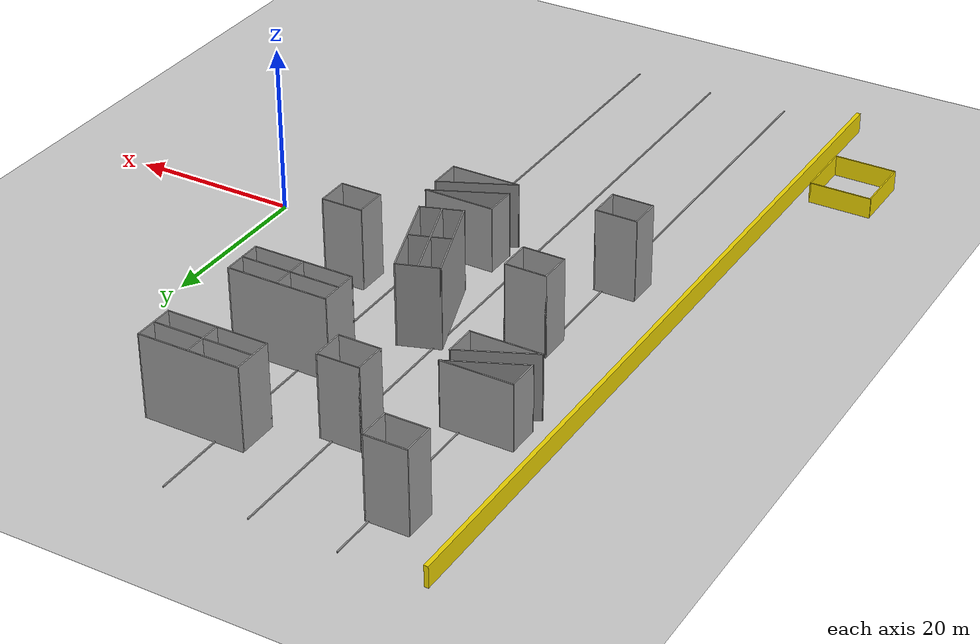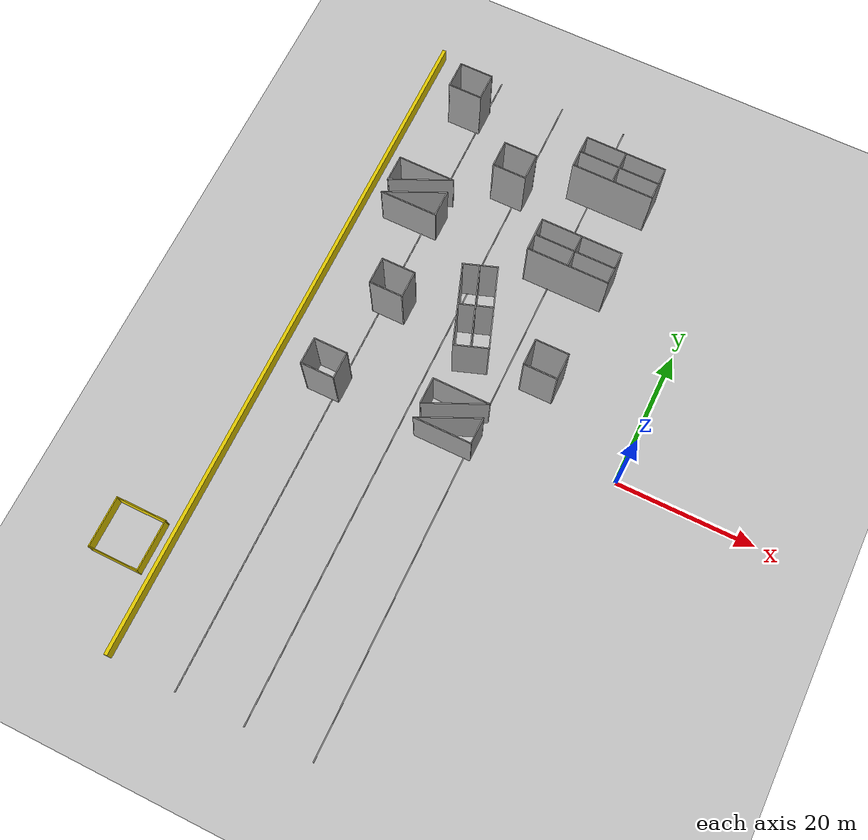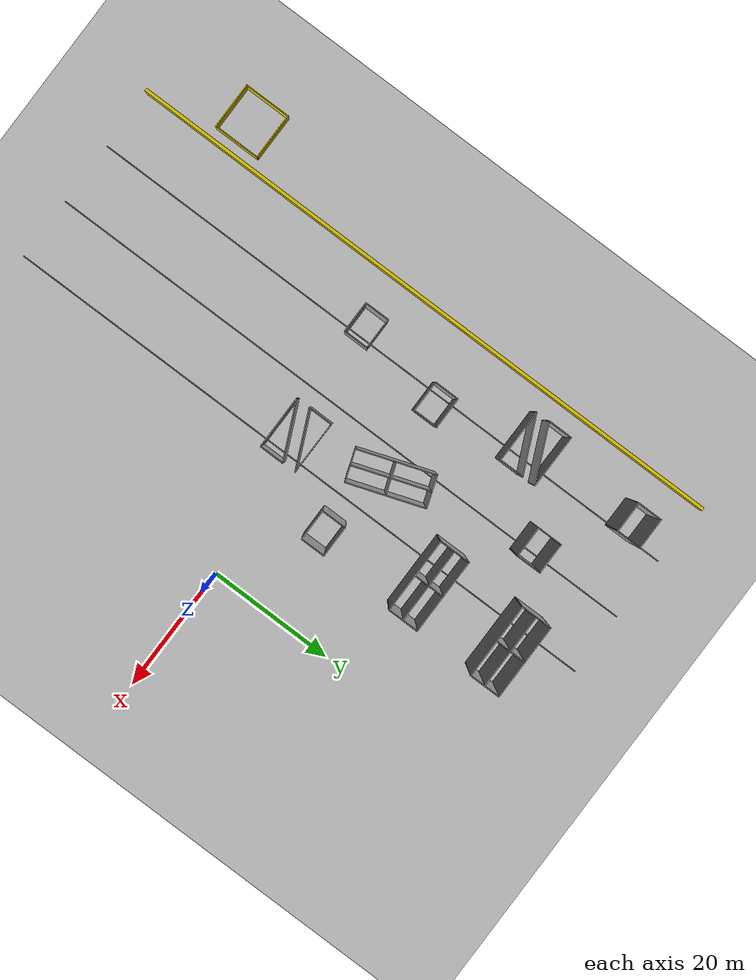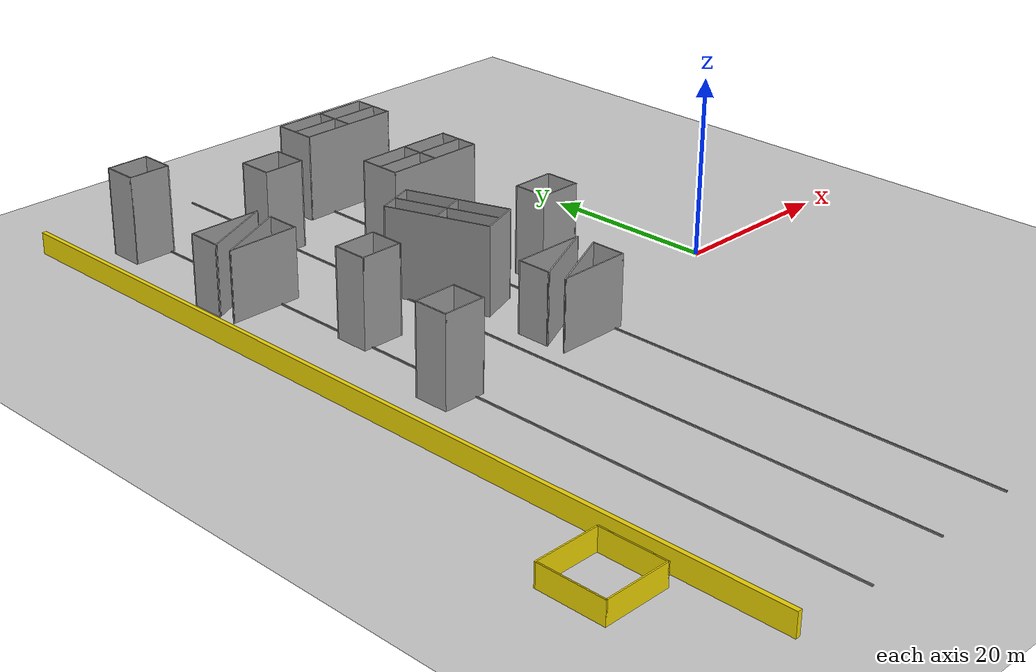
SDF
<sdf version="1.7">
 <world name="default">
  <model name="ground_plane">
   <static>1</static>
   <link name="link">
    <collision name="collision">
     <geometry><plane><normal>0 0 1</normal><size>100 100</size></plane></geometry>
     <surface><friction><ode><mu>100</mu><mu2>50</mu2></ode></friction></surface>
    </collision>
    <visual name="visual">
     <cast_shadows>0</cast_shadows>
     <geometry><plane><normal>0 0 1</normal><size>100 100</size></plane></geometry>
     <material>
      <script><uri>file://media/materials/scripts/gazebo.material</uri><name>Gazebo/Grey</name></script>
     </material>
    </visual>
   </link>
  </model>
  <model name="gridline100m_clone_0_clone_clone_0_clone">
   <link name="Wall_2">
    <pose>2e-06 -3.05812 0 0 -0 1.571</pose>
    <inertial>
     <mass>1</mass>
     <inertia><ixx>1</ixx><ixy>0</ixy><ixz>0</ixz><iyy>1</iyy><iyz>0</iyz><izz>1</izz></inertia>
    </inertial>
    <visual name="Wall_2_Visual">
     <pose>0 0 0.075 0 -0 0</pose>
     <geometry><box><size>100 0.15 0.15</size></box></geometry>
     <material>
      <script><uri>file://media/materials/scripts/gazebo.material</uri><name>Gazebo/Grey</name></script>
      <ambient>0 0 0 1</ambient>
      <shader type="pixel"><normal_map>__default__</normal_map></shader>
      <diffuse>0.7 0.7 0.7 1</diffuse>
      <specular>0.01 0.01 0.01 1</specular>
      <emissive>0 0 0 1</emissive>
     </material>
     <meta><layer>0</layer></meta>
    </visual>
    <collision name="Wall_2_Collision">
     <pose>0 0 0.075 0 -0 0</pose>
     <geometry><box><size>100 0.15 0.15</size></box></geometry>
     <surface>
      <friction>
       <ode><mu>1</mu><mu2>1</mu2><fdir1>0 0 0</fdir1><slip1>0</slip1><slip2>0</slip2></ode>
       <torsional>
        <coefficient>1</coefficient>
        <patch_radius>0</patch_radius>
        <surface_radius>0</surface_radius>
        <use_patch_radius>1</use_patch_radius>
        <ode><slip>0</slip></ode>
       </torsional>
      </friction>
      <bounce><restitution_coefficient>0</restitution_coefficient><threshold>1e+06</threshold></bounce>
      <contact>
       <collide_without_contact>0</collide_without_contact>
       <collide_without_contact_bitmask>1</collide_without_contact_bitmask>
       <collide_bitmask>1</collide_bitmask>
       <ode>
        <soft_cfm>0</soft_cfm>
        <soft_erp>0.2</soft_erp>
        <kp>1e+13</kp>
        <kd>1</kd>
        <max_vel>0.01</max_vel>
        <min_depth>0</min_depth>
       </ode>
       <bullet>
        <split_impulse>1</split_impulse>
        <split_impulse_penetration_threshold>-0.01</split_impulse_penetration_threshold>
        <soft_cfm>0</soft_cfm>
        <soft_erp>0.2</soft_erp>
        <kp>1e+13</kp>
        <kd>1</kd>
       </bullet>
      </contact>
     </surface>
    </collision>
   </link>
   <static>1</static>
   <pose>-20.0665 3.08574 0 0 -0 0</pose>
  </model>
  <model name="gridline100m_clone_0_clone_clone_0_clone_clone">
   <link name="Wall_2">
    <pose>2e-06 -3.05812 0 0 -0 1.571</pose>
    <inertial>
     <mass>1</mass>
     <inertia><ixx>1</ixx><ixy>0</ixy><ixz>0</ixz><iyy>1</iyy><iyz>0</iyz><izz>1</izz></inertia>
    </inertial>
    <visual name="Wall_2_Visual">
     <pose>0 0 0.075 0 -0 0</pose>
     <geometry><box><size>100 0.15 0.15</size></box></geometry>
     <material>
      <script><uri>file://media/materials/scripts/gazebo.material</uri><name>Gazebo/Grey</name></script>
      <ambient>0 0 0 1</ambient>
      <shader type="pixel"><normal_map>__default__</normal_map></shader>
      <diffuse>0.7 0.7 0.7 1</diffuse>
      <specular>0.01 0.01 0.01 1</specular>
      <emissive>0 0 0 1</emissive>
     </material>
     <meta><layer>0</layer></meta>
    </visual>
    <collision name="Wall_2_Collision">
     <pose>0 0 0.075 0 -0 0</pose>
     <geometry><box><size>100 0.15 0.15</size></box></geometry>
     <surface>
      <friction>
       <ode><mu>1</mu><mu2>1</mu2><fdir1>0 0 0</fdir1><slip1>0</slip1><slip2>0</slip2></ode>
       <torsional>
        <coefficient>1</coefficient>
        <patch_radius>0</patch_radius>
        <surface_radius>0</surface_radius>
        <use_patch_radius>1</use_patch_radius>
        <ode><slip>0</slip></ode>
       </torsional>
      </friction>
      <bounce><restitution_coefficient>0</restitution_coefficient><threshold>1e+06</threshold></bounce>
      <contact>
       <collide_without_contact>0</collide_without_contact>
       <collide_without_contact_bitmask>1</collide_without_contact_bitmask>
       <collide_bitmask>1</collide_bitmask>
       <ode>
        <soft_cfm>0</soft_cfm>
        <soft_erp>0.2</soft_erp>
        <kp>1e+13</kp>
        <kd>1</kd>
        <max_vel>0.01</max_vel>
        <min_depth>0</min_depth>
       </ode>
       <bullet>
        <split_impulse>1</split_impulse>
        <split_impulse_penetration_threshold>-0.01</split_impulse_penetration_threshold>
        <soft_cfm>0</soft_cfm>
        <soft_erp>0.2</soft_erp>
        <kp>1e+13</kp>
        <kd>1</kd>
       </bullet>
      </contact>
     </surface>
    </collision>
   </link>
   <static>1</static>
   <pose>-30.0159 3.12682 0 0 -0 0</pose>
  </model>
  <model name="gridline100m_clone_0_clone_clone_0_clone_clone_clone">
   <link name="Wall_2">
    <pose>2e-06 -3.05812 0 0 -0 1.571</pose>
    <inertial>
     <mass>1</mass>
     <inertia><ixx>1</ixx><ixy>0</ixy><ixz>0</ixz><iyy>1</iyy><iyz>0</iyz><izz>1</izz></inertia>
    </inertial>
    <visual name="Wall_2_Visual">
     <pose>0 0 0.075 0 -0 0</pose>
     <geometry><box><size>100 0.15 0.15</size></box></geometry>
     <material>
      <script><uri>file://media/materials/scripts/gazebo.material</uri><name>Gazebo/Grey</name></script>
      <ambient>0 0 0 1</ambient>
      <shader type="pixel"><normal_map>__default__</normal_map></shader>
      <diffuse>0.7 0.7 0.7 1</diffuse>
      <specular>0.01 0.01 0.01 1</specular>
      <emissive>0 0 0 1</emissive>
     </material>
     <meta><layer>0</layer></meta>
    </visual>
    <collision name="Wall_2_Collision">
     <pose>0 0 0.075 0 -0 0</pose>
     <geometry><box><size>100 0.15 0.15</size></box></geometry>
     <surface>
      <friction>
       <ode><mu>1</mu><mu2>1</mu2><fdir1>0 0 0</fdir1><slip1>0</slip1><slip2>0</slip2></ode>
       <torsional>
        <coefficient>1</coefficient>
        <patch_radius>0</patch_radius>
        <surface_radius>0</surface_radius>
        <use_patch_radius>1</use_patch_radius>
        <ode><slip>0</slip></ode>
       </torsional>
      </friction>
      <bounce><restitution_coefficient>0</restitution_coefficient><threshold>1e+06</threshold></bounce>
      <contact>
       <collide_without_contact>0</collide_without_contact>
       <collide_without_contact_bitmask>1</collide_without_contact_bitmask>
       <collide_bitmask>1</collide_bitmask>
       <ode>
        <soft_cfm>0</soft_cfm>
        <soft_erp>0.2</soft_erp>
        <kp>1e+13</kp>
        <kd>1</kd>
        <max_vel>0.01</max_vel>
        <min_depth>0</min_depth>
       </ode>
       <bullet>
        <split_impulse>1</split_impulse>
        <split_impulse_penetration_threshold>-0.01</split_impulse_penetration_threshold>
        <soft_cfm>0</soft_cfm>
        <soft_erp>0.2</soft_erp>
        <kp>1e+13</kp>
        <kd>1</kd>
       </bullet>
      </contact>
     </surface>
    </collision>
   </link>
   <static>1</static>
   <pose>-40.0496 3.09833 0 0 -0 0</pose>
  </model>
  <model name="100mfence_clone_clone">
   <link name="Wall_0">
    <pose>-13.0161 -13.4589 0 0 -0 1.571</pose>
    <inertial>
     <mass>1</mass>
     <inertia><ixx>1</ixx><ixy>0</ixy><ixz>0</ixz><iyy>1</iyy><iyz>0</iyz><izz>1</izz></inertia>
    </inertial>
    <visual name="Wall_0_Visual">
     <pose>0 0 1.25 0 -0 0</pose>
     <geometry><box><size>100 0.5 2.5</size></box></geometry>
     <material>
      <script><uri>file://media/materials/scripts/gazebo.material</uri><name>Gazebo/Grey</name></script>
      <ambient>0.929 0.831 0 1</ambient>
      <shader type="pixel"><normal_map>__default__</normal_map></shader>
      <diffuse>0.7 0.7 0.7 1</diffuse>
      <specular>0.01 0.01 0.01 1</specular>
      <emissive>0 0 0 1</emissive>
     </material>
     <meta><layer>0</layer></meta>
    </visual>
    <collision name="Wall_0_Collision">
     <pose>0 0 1.25 0 -0 0</pose>
     <geometry><box><size>100 0.15 2.5</size></box></geometry>
     <surface>
      <friction>
       <ode><mu>1</mu><mu2>1</mu2><fdir1>0 0 0</fdir1><slip1>0</slip1><slip2>0</slip2></ode>
       <torsional>
        <coefficient>1</coefficient>
        <patch_radius>0</patch_radius>
        <surface_radius>0</surface_radius>
        <use_patch_radius>1</use_patch_radius>
        <ode><slip>0</slip></ode>
       </torsional>
      </friction>
      <bounce><restitution_coefficient>0</restitution_coefficient><threshold>1e+06</threshold></bounce>
      <contact>
       <collide_without_contact>0</collide_without_contact>
       <collide_without_contact_bitmask>1</collide_without_contact_bitmask>
       <collide_bitmask>1</collide_bitmask>
       <ode>
        <soft_cfm>0</soft_cfm>
        <soft_erp>0.2</soft_erp>
        <kp>1e+13</kp>
        <kd>1</kd>
        <max_vel>0.01</max_vel>
        <min_depth>0</min_depth>
       </ode>
       <bullet>
        <split_impulse>1</split_impulse>
        <split_impulse_penetration_threshold>-0.01</split_impulse_penetration_threshold>
        <soft_cfm>0</soft_cfm>
        <soft_erp>0.2</soft_erp>
        <kp>1e+13</kp>
        <kd>1</kd>
       </bullet>
      </contact>
     </surface>
    </collision>
   </link>
   <static>1</static>
   <pose>-36.7919 13.635 0 0 -0 0</pose>
  </model>
  <model name="building1">
   <pose>-37.3685 11.6246 0 0 -0 0</pose>
   <link name="Wall_12">
    <collision name="Wall_12_Collision">
     <geometry><box><size>5 0.15 10</size></box></geometry>
     <pose>0 0 5 0 -0 0</pose>
    </collision>
    <visual name="Wall_12_Visual">
     <pose>0 0 5 0 -0 0</pose>
     <geometry><box><size>5 0.15 10</size></box></geometry>
     <material>
      <script><uri>file://media/materials/scripts/gazebo.material</uri><name>Gazebo/Grey</name></script>
      <ambient>0 0 0 1</ambient>
     </material>
     <meta><layer>0</layer></meta>
    </visual>
    <pose>-1.19 -3.2645 0 0 -0 0</pose>
   </link>
   <link name="Wall_13">
    <collision name="Wall_13_Collision">
     <geometry><box><size>4 0.15 10</size></box></geometry>
     <pose>0 0 5 0 -0 0</pose>
    </collision>
    <visual name="Wall_13_Visual">
     <pose>0 0 5 0 -0 0</pose>
     <geometry><box><size>4 0.15 10</size></box></geometry>
     <material>
      <script><uri>file://media/materials/scripts/gazebo.material</uri><name>Gazebo/Grey</name></script>
      <ambient>0 0 0 1</ambient>
     </material>
     <meta><layer>0</layer></meta>
    </visual>
    <pose>1.235 -1.3395 0 0 -0 1.5708</pose>
   </link>
   <link name="Wall_15">
    <collision name="Wall_15_Collision">
     <geometry><box><size>5 0.15 10</size></box></geometry>
     <pose>0 0 5 0 -0 0</pose>
    </collision>
    <visual name="Wall_15_Visual">
     <pose>0 0 5 0 -0 0</pose>
     <geometry><box><size>5 0.15 10</size></box></geometry>
     <material>
      <script><uri>file://media/materials/scripts/gazebo.material</uri><name>Gazebo/Grey</name></script>
      <ambient>0 0 0 1</ambient>
     </material>
     <meta><layer>0</layer></meta>
    </visual>
    <pose>-1.19 0.5855 0 0 -0 3.14159</pose>
   </link>
   <link name="Wall_16">
    <collision name="Wall_16_Collision">
     <geometry><box><size>4 0.15 10</size></box></geometry>
     <pose>0 0 5 0 -0 0</pose>
    </collision>
    <visual name="Wall_16_Visual">
     <pose>0 0 5 0 -0 0</pose>
     <geometry><box><size>4 0.15 10</size></box></geometry>
     <material>
      <script><uri>file://media/materials/scripts/gazebo.material</uri><name>Gazebo/Grey</name></script>
      <ambient>0 0 0 1</ambient>
     </material>
     <meta><layer>0</layer></meta>
    </visual>
    <pose>-3.615 -1.3395 0 0 -0 -1.5708</pose>
   </link>
   <static>1</static>
  </model>
  <model name="building2">
   <pose>-23.4031 -2.16335 0 0 -0 0</pose>
   <link name="Wall_20">
    <collision name="Wall_20_Collision">
     <geometry><box><size>4 0.15 8</size></box></geometry>
     <pose>0 0 4 0 -0 0</pose>
    </collision>
    <visual name="Wall_20_Visual">
     <pose>0 0 4 0 -0 0</pose>
     <geometry><box><size>4 0.15 8</size></box></geometry>
     <material>
      <script><uri>file://media/materials/scripts/gazebo.material</uri><name>Gazebo/Grey</name></script>
      <ambient>0.00784314 0.00784314 0.00784314 1</ambient>
     </material>
     <meta><layer>0</layer></meta>
    </visual>
    <pose>4.175 -1.60474 0 0 -0 -1.5708</pose>
   </link>
   <link name="Wall_21">
    <collision name="Wall_21_Collision">
     <geometry><box><size>8.5 0.15 8</size></box></geometry>
     <pose>0 0 4 0 -0 0</pose>
    </collision>
    <visual name="Wall_21_Visual">
     <pose>0 0 4 0 -0 0</pose>
     <geometry><box><size>8.5 0.15 8</size></box></geometry>
     <material>
      <script><uri>file://media/materials/scripts/gazebo.material</uri><name>Gazebo/Grey</name></script>
      <ambient>0.00784314 0.00784314 0.00784314 1</ambient>
     </material>
     <meta><layer>0</layer></meta>
    </visual>
    <pose>-0 -3.52974 0 0 -0 3.14159</pose>
   </link>
   <link name="Wall_24">
    <collision name="Wall_24_Collision">
     <geometry><box><size>9.34484 0.15 8</size></box></geometry>
     <pose>0 0 4 0 -0 0</pose>
    </collision>
    <visual name="Wall_24_Visual">
     <pose>0 0 4 0 -0 0</pose>
     <geometry><box><size>9.34484 0.15 8</size></box></geometry>
     <material>
      <script><uri>file://media/materials/scripts/gazebo.material</uri><name>Gazebo/Grey</name></script>
      <ambient>0.00784314 0.00784314 0.00784314 1</ambient>
     </material>
     <meta><layer>0</layer></meta>
    </visual>
    <pose>-0 -1.60474 0 0 -0 0.432028</pose>
   </link>
   <static>1</static>
  </model>
  <model name="building2_clone">
   <pose>-23.4605 -3.22901 0 0 -0 3.13698</pose>
   <link name="Wall_20">
    <collision name="Wall_20_Collision">
     <geometry><box><size>4 0.15 8</size></box></geometry>
     <pose>0 0 4 0 -0 0</pose>
    </collision>
    <visual name="Wall_20_Visual">
     <pose>0 0 4 0 -0 0</pose>
     <geometry><box><size>4 0.15 8</size></box></geometry>
     <material>
      <script><uri>file://media/materials/scripts/gazebo.material</uri><name>Gazebo/Grey</name></script>
      <ambient>0.00784314 0.00784314 0.00784314 1</ambient>
     </material>
     <meta><layer>0</layer></meta>
    </visual>
    <pose>4.175 -1.60474 0 0 -0 -1.5708</pose>
   </link>
   <link name="Wall_21">
    <collision name="Wall_21_Collision">
     <geometry><box><size>8.5 0.15 8</size></box></geometry>
     <pose>0 0 4 0 -0 0</pose>
    </collision>
    <visual name="Wall_21_Visual">
     <pose>0 0 4 0 -0 0</pose>
     <geometry><box><size>8.5 0.15 8</size></box></geometry>
     <material>
      <script><uri>file://media/materials/scripts/gazebo.material</uri><name>Gazebo/Grey</name></script>
      <ambient>0.00784314 0.00784314 0.00784314 1</ambient>
     </material>
     <meta><layer>0</layer></meta>
    </visual>
    <pose>-0 -3.52974 0 0 -0 3.14159</pose>
   </link>
   <link name="Wall_24">
    <collision name="Wall_24_Collision">
     <geometry><box><size>9.34484 0.15 8</size></box></geometry>
     <pose>0 0 4 0 -0 0</pose>
    </collision>
    <visual name="Wall_24_Visual">
     <pose>0 0 4 0 -0 0</pose>
     <geometry><box><size>9.34484 0.15 8</size></box></geometry>
     <material>
      <script><uri>file://media/materials/scripts/gazebo.material</uri><name>Gazebo/Grey</name></script>
      <ambient>0.00784314 0.00784314 0.00784314 1</ambient>
     </material>
     <meta><layer>0</layer></meta>
    </visual>
    <pose>-0 -1.60474 0 0 -0 0.432028</pose>
   </link>
   <static>1</static>
  </model>
  <model name="building1_clone">
   <pose>-29.8796 35.0783 0 0 -0 0</pose>
   <link name="Wall_12">
    <collision name="Wall_12_Collision">
     <geometry><box><size>5 0.15 10</size></box></geometry>
     <pose>0 0 5 0 -0 0</pose>
    </collision>
    <visual name="Wall_12_Visual">
     <pose>0 0 5 0 -0 0</pose>
     <geometry><box><size>5 0.15 10</size></box></geometry>
     <material>
      <script><uri>file://media/materials/scripts/gazebo.material</uri><name>Gazebo/Grey</name></script>
      <ambient>0 0 0 1</ambient>
     </material>
     <meta><layer>0</layer></meta>
    </visual>
    <pose>-1.19 -3.2645 0 0 -0 0</pose>
   </link>
   <link name="Wall_13">
    <collision name="Wall_13_Collision">
     <geometry><box><size>4 0.15 10</size></box></geometry>
     <pose>0 0 5 0 -0 0</pose>
    </collision>
    <visual name="Wall_13_Visual">
     <pose>0 0 5 0 -0 0</pose>
     <geometry><box><size>4 0.15 10</size></box></geometry>
     <material>
      <script><uri>file://media/materials/scripts/gazebo.material</uri><name>Gazebo/Grey</name></script>
      <ambient>0 0 0 1</ambient>
     </material>
     <meta><layer>0</layer></meta>
    </visual>
    <pose>1.235 -1.3395 0 0 -0 1.5708</pose>
   </link>
   <link name="Wall_15">
    <collision name="Wall_15_Collision">
     <geometry><box><size>5 0.15 10</size></box></geometry>
     <pose>0 0 5 0 -0 0</pose>
    </collision>
    <visual name="Wall_15_Visual">
     <pose>0 0 5 0 -0 0</pose>
     <geometry><box><size>5 0.15 10</size></box></geometry>
     <material>
      <script><uri>file://media/materials/scripts/gazebo.material</uri><name>Gazebo/Grey</name></script>
      <ambient>0 0 0 1</ambient>
     </material>
     <meta><layer>0</layer></meta>
    </visual>
    <pose>-1.19 0.5855 0 0 -0 3.14159</pose>
   </link>
   <link name="Wall_16">
    <collision name="Wall_16_Collision">
     <geometry><box><size>4 0.15 10</size></box></geometry>
     <pose>0 0 5 0 -0 0</pose>
    </collision>
    <visual name="Wall_16_Visual">
     <pose>0 0 5 0 -0 0</pose>
     <geometry><box><size>4 0.15 10</size></box></geometry>
     <material>
      <script><uri>file://media/materials/scripts/gazebo.material</uri><name>Gazebo/Grey</name></script>
      <ambient>0 0 0 1</ambient>
     </material>
     <meta><layer>0</layer></meta>
    </visual>
    <pose>-3.615 -1.3395 0 0 -0 -1.5708</pose>
   </link>
   <static>1</static>
  </model>
  <model name="building1_clone_0">
   <pose>-13.8041 9.88368 0 0 -0 0</pose>
   <link name="Wall_12">
    <collision name="Wall_12_Collision">
     <geometry><box><size>5 0.15 10</size></box></geometry>
     <pose>0 0 5 0 -0 0</pose>
    </collision>
    <visual name="Wall_12_Visual">
     <pose>0 0 5 0 -0 0</pose>
     <geometry><box><size>5 0.15 10</size></box></geometry>
     <material>
      <script><uri>file://media/materials/scripts/gazebo.material</uri><name>Gazebo/Grey</name></script>
      <ambient>0 0 0 1</ambient>
     </material>
     <meta><layer>0</layer></meta>
    </visual>
    <pose>-1.19 -3.2645 0 0 -0 0</pose>
   </link>
   <link name="Wall_13">
    <collision name="Wall_13_Collision">
     <geometry><box><size>4 0.15 10</size></box></geometry>
     <pose>0 0 5 0 -0 0</pose>
    </collision>
    <visual name="Wall_13_Visual">
     <pose>0 0 5 0 -0 0</pose>
     <geometry><box><size>4 0.15 10</size></box></geometry>
     <material>
      <script><uri>file://media/materials/scripts/gazebo.material</uri><name>Gazebo/Grey</name></script>
      <ambient>0 0 0 1</ambient>
     </material>
     <meta><layer>0</layer></meta>
    </visual>
    <pose>1.235 -1.3395 0 0 -0 1.5708</pose>
   </link>
   <link name="Wall_15">
    <collision name="Wall_15_Collision">
     <geometry><box><size>5 0.15 10</size></box></geometry>
     <pose>0 0 5 0 -0 0</pose>
    </collision>
    <visual name="Wall_15_Visual">
     <pose>0 0 5 0 -0 0</pose>
     <geometry><box><size>5 0.15 10</size></box></geometry>
     <material>
      <script><uri>file://media/materials/scripts/gazebo.material</uri><name>Gazebo/Grey</name></script>
      <ambient>0 0 0 1</ambient>
     </material>
     <meta><layer>0</layer></meta>
    </visual>
    <pose>-1.19 0.5855 0 0 -0 3.14159</pose>
   </link>
   <link name="Wall_16">
    <collision name="Wall_16_Collision">
     <geometry><box><size>4 0.15 10</size></box></geometry>
     <pose>0 0 5 0 -0 0</pose>
    </collision>
    <visual name="Wall_16_Visual">
     <pose>0 0 5 0 -0 0</pose>
     <geometry><box><size>4 0.15 10</size></box></geometry>
     <material>
      <script><uri>file://media/materials/scripts/gazebo.material</uri><name>Gazebo/Grey</name></script>
      <ambient>0 0 0 1</ambient>
     </material>
     <meta><layer>0</layer></meta>
    </visual>
    <pose>-3.615 -1.3395 0 0 -0 -1.5708</pose>
   </link>
   <static>1</static>
  </model>
  <model name="building1_clone_1">
   <pose>-40.328 -2.68313 0 0 -0 0</pose>
   <link name="Wall_12">
    <collision name="Wall_12_Collision">
     <geometry><box><size>5 0.15 10</size></box></geometry>
     <pose>0 0 5 0 -0 0</pose>
    </collision>
    <visual name="Wall_12_Visual">
     <pose>0 0 5 0 -0 0</pose>
     <geometry><box><size>5 0.15 10</size></box></geometry>
     <material>
      <script><uri>file://media/materials/scripts/gazebo.material</uri><name>Gazebo/Grey</name></script>
      <ambient>0 0 0 1</ambient>
     </material>
     <meta><layer>0</layer></meta>
    </visual>
    <pose>-1.19 -3.2645 0 0 -0 0</pose>
   </link>
   <link name="Wall_13">
    <collision name="Wall_13_Collision">
     <geometry><box><size>4 0.15 10</size></box></geometry>
     <pose>0 0 5 0 -0 0</pose>
    </collision>
    <visual name="Wall_13_Visual">
     <pose>0 0 5 0 -0 0</pose>
     <geometry><box><size>4 0.15 10</size></box></geometry>
     <material>
      <script><uri>file://media/materials/scripts/gazebo.material</uri><name>Gazebo/Grey</name></script>
      <ambient>0 0 0 1</ambient>
     </material>
     <meta><layer>0</layer></meta>
    </visual>
    <pose>1.235 -1.3395 0 0 -0 1.5708</pose>
   </link>
   <link name="Wall_15">
    <collision name="Wall_15_Collision">
     <geometry><box><size>5 0.15 10</size></box></geometry>
     <pose>0 0 5 0 -0 0</pose>
    </collision>
    <visual name="Wall_15_Visual">
     <pose>0 0 5 0 -0 0</pose>
     <geometry><box><size>5 0.15 10</size></box></geometry>
     <material>
      <script><uri>file://media/materials/scripts/gazebo.material</uri><name>Gazebo/Grey</name></script>
      <ambient>0 0 0 1</ambient>
     </material>
     <meta><layer>0</layer></meta>
    </visual>
    <pose>-1.19 0.5855 0 0 -0 3.14159</pose>
   </link>
   <link name="Wall_16">
    <collision name="Wall_16_Collision">
     <geometry><box><size>4 0.15 10</size></box></geometry>
     <pose>0 0 5 0 -0 0</pose>
    </collision>
    <visual name="Wall_16_Visual">
     <pose>0 0 5 0 -0 0</pose>
     <geometry><box><size>4 0.15 10</size></box></geometry>
     <material>
      <script><uri>file://media/materials/scripts/gazebo.material</uri><name>Gazebo/Grey</name></script>
      <ambient>0 0 0 1</ambient>
     </material>
     <meta><layer>0</layer></meta>
    </visual>
    <pose>-3.615 -1.3395 0 0 -0 -1.5708</pose>
   </link>
   <static>1</static>
  </model>
  <model name="building2_clone_0">
   <pose>-42.0321 25.7087 0 0 -0 0</pose>
   <link name="Wall_20">
    <collision name="Wall_20_Collision">
     <geometry><box><size>4 0.15 8</size></box></geometry>
     <pose>0 0 4 0 -0 0</pose>
    </collision>
    <visual name="Wall_20_Visual">
     <pose>0 0 4 0 -0 0</pose>
     <geometry><box><size>4 0.15 8</size></box></geometry>
     <material>
      <script><uri>file://media/materials/scripts/gazebo.material</uri><name>Gazebo/Grey</name></script>
      <ambient>0.00784314 0.00784314 0.00784314 1</ambient>
     </material>
     <meta><layer>0</layer></meta>
    </visual>
    <pose>4.175 -1.60474 0 0 -0 -1.5708</pose>
   </link>
   <link name="Wall_21">
    <collision name="Wall_21_Collision">
     <geometry><box><size>8.5 0.15 8</size></box></geometry>
     <pose>0 0 4 0 -0 0</pose>
    </collision>
    <visual name="Wall_21_Visual">
     <pose>0 0 4 0 -0 0</pose>
     <geometry><box><size>8.5 0.15 8</size></box></geometry>
     <material>
      <script><uri>file://media/materials/scripts/gazebo.material</uri><name>Gazebo/Grey</name></script>
      <ambient>0.00784314 0.00784314 0.00784314 1</ambient>
     </material>
     <meta><layer>0</layer></meta>
    </visual>
    <pose>-0 -3.52974 0 0 -0 3.14159</pose>
   </link>
   <link name="Wall_24">
    <collision name="Wall_24_Collision">
     <geometry><box><size>9.34484 0.15 8</size></box></geometry>
     <pose>0 0 4 0 -0 0</pose>
    </collision>
    <visual name="Wall_24_Visual">
     <pose>0 0 4 0 -0 0</pose>
     <geometry><box><size>9.34484 0.15 8</size></box></geometry>
     <material>
      <script><uri>file://media/materials/scripts/gazebo.material</uri><name>Gazebo/Grey</name></script>
      <ambient>0.00784314 0.00784314 0.00784314 1</ambient>
     </material>
     <meta><layer>0</layer></meta>
    </visual>
    <pose>-0 -1.60474 0 0 -0 0.432028</pose>
   </link>
   <static>1</static>
  </model>
  <model name="building2_clone_clone">
   <pose>-42.105 24.6316 0 0 -0 3.13698</pose>
   <link name="Wall_20">
    <collision name="Wall_20_Collision">
     <geometry><box><size>4 0.15 8</size></box></geometry>
     <pose>0 0 4 0 -0 0</pose>
    </collision>
    <visual name="Wall_20_Visual">
     <pose>0 0 4 0 -0 0</pose>
     <geometry><box><size>4 0.15 8</size></box></geometry>
     <material>
      <script><uri>file://media/materials/scripts/gazebo.material</uri><name>Gazebo/Grey</name></script>
      <ambient>0.00784314 0.00784314 0.00784314 1</ambient>
     </material>
     <meta><layer>0</layer></meta>
    </visual>
    <pose>4.175 -1.60474 0 0 -0 -1.5708</pose>
   </link>
   <link name="Wall_21">
    <collision name="Wall_21_Collision">
     <geometry><box><size>8.5 0.15 8</size></box></geometry>
     <pose>0 0 4 0 -0 0</pose>
    </collision>
    <visual name="Wall_21_Visual">
     <pose>0 0 4 0 -0 0</pose>
     <geometry><box><size>8.5 0.15 8</size></box></geometry>
     <material>
      <script><uri>file://media/materials/scripts/gazebo.material</uri><name>Gazebo/Grey</name></script>
      <ambient>0.00784314 0.00784314 0.00784314 1</ambient>
     </material>
     <meta><layer>0</layer></meta>
    </visual>
    <pose>-0 -3.52974 0 0 -0 3.14159</pose>
   </link>
   <link name="Wall_24">
    <collision name="Wall_24_Collision">
     <geometry><box><size>9.34484 0.15 8</size></box></geometry>
     <pose>0 0 4 0 -0 0</pose>
    </collision>
    <visual name="Wall_24_Visual">
     <pose>0 0 4 0 -0 0</pose>
     <geometry><box><size>9.34484 0.15 8</size></box></geometry>
     <material>
      <script><uri>file://media/materials/scripts/gazebo.material</uri><name>Gazebo/Grey</name></script>
      <ambient>0.00784314 0.00784314 0.00784314 1</ambient>
     </material>
     <meta><layer>0</layer></meta>
    </visual>
    <pose>-0 -1.60474 0 0 -0 0.432028</pose>
   </link>
   <static>1</static>
  </model>
  <model name="building5">
   <pose>-17.9451 26.983 0 0 -0 0</pose>
   <link name="Wall_64">
    <collision name="Wall_64_Collision">
     <geometry><box><size>12 0.15 10</size></box></geometry>
     <pose>0 0 5 0 -0 0</pose>
    </collision>
    <visual name="Wall_64_Visual">
     <pose>0 0 5 0 -0 0</pose>
     <geometry><box><size>12 0.15 10</size></box></geometry>
     <material>
      <script><uri>file://media/materials/scripts/gazebo.material</uri><name>Gazebo/Grey</name></script>
      <ambient>0.00784314 0.00784314 0.00784314 1</ambient>
     </material>
     <meta><layer>0</layer></meta>
    </visual>
    <pose>0 -4.8275 0 0 -0 0</pose>
   </link>
   <link name="Wall_65">
    <collision name="Wall_65_Collision">
     <geometry><box><size>5 0.15 10</size></box></geometry>
     <pose>0 0 5 0 -0 0</pose>
    </collision>
    <visual name="Wall_65_Visual">
     <pose>0 0 5 0 -0 0</pose>
     <geometry><box><size>5 0.15 10</size></box></geometry>
     <material>
      <script><uri>file://media/materials/scripts/gazebo.material</uri><name>Gazebo/Grey</name></script>
      <ambient>0.00784314 0.00784314 0.00784314 1</ambient>
     </material>
     <meta><layer>0</layer></meta>
    </visual>
    <pose>5.925 -2.4025 0 0 -0 1.5708</pose>
   </link>
   <link name="Wall_66">
    <collision name="Wall_66_Collision">
     <geometry><box><size>12 0.15 10</size></box></geometry>
     <pose>0 0 5 0 -0 0</pose>
    </collision>
    <visual name="Wall_66_Visual">
     <pose>0 0 5 0 -0 0</pose>
     <geometry><box><size>12 0.15 10</size></box></geometry>
     <material>
      <script><uri>file://media/materials/scripts/gazebo.material</uri><name>Gazebo/Grey</name></script>
      <ambient>0.00784314 0.00784314 0.00784314 1</ambient>
     </material>
     <meta><layer>0</layer></meta>
    </visual>
    <pose>0 0.0225 0 0 -0 3.14159</pose>
   </link>
   <link name="Wall_67">
    <collision name="Wall_67_Collision">
     <geometry><box><size>5 0.15 10</size></box></geometry>
     <pose>0 0 5 0 -0 0</pose>
    </collision>
    <visual name="Wall_67_Visual">
     <pose>0 0 5 0 -0 0</pose>
     <geometry><box><size>5 0.15 10</size></box></geometry>
     <material>
      <script><uri>file://media/materials/scripts/gazebo.material</uri><name>Gazebo/Grey</name></script>
      <ambient>0.00784314 0.00784314 0.00784314 1</ambient>
     </material>
     <meta><layer>0</layer></meta>
    </visual>
    <pose>-5.925 -2.4025 0 0 -0 -1.5708</pose>
   </link>
   <link name="Wall_69">
    <collision name="Wall_69_Collision">
     <geometry><box><size>4.9 0.15 10</size></box></geometry>
     <pose>0 0 5 0 -0 0</pose>
    </collision>
    <visual name="Wall_69_Visual">
     <pose>0 0 5 0 -0 0</pose>
     <geometry><box><size>4.9 0.15 10</size></box></geometry>
     <material>
      <script><uri>file://media/materials/scripts/gazebo.material</uri><name>Gazebo/Grey</name></script>
      <ambient>0.00784314 0.00784314 0.00784314 1</ambient>
     </material>
     <meta><layer>0</layer></meta>
    </visual>
    <pose>0 -2.3885 0 0 -0 -1.5708</pose>
   </link>
   <link name="Wall_74">
    <collision name="Wall_74_Collision">
     <geometry><box><size>11.9 0.15 10</size></box></geometry>
     <pose>0 0 5 0 -0 0</pose>
    </collision>
    <visual name="Wall_74_Visual">
     <pose>0 0 5 0 -0 0</pose>
     <geometry><box><size>11.9 0.15 10</size></box></geometry>
     <material>
      <script><uri>file://media/materials/scripts/gazebo.material</uri><name>Gazebo/Grey</name></script>
      <ambient>0.00784314 0.00784314 0.00784314 1</ambient>
     </material>
     <meta><layer>0</layer></meta>
    </visual>
    <pose>-0.024 -2.4605 0 0 -0 0</pose>
   </link>
   <static>1</static>
  </model>
  <model name="building5_clone">
   <pose>-17.5037 41.4384 0 0 -0 0</pose>
   <link name="Wall_64">
    <collision name="Wall_64_Collision">
     <geometry><box><size>12 0.15 10</size></box></geometry>
     <pose>0 0 5 0 -0 0</pose>
    </collision>
    <visual name="Wall_64_Visual">
     <pose>0 0 5 0 -0 0</pose>
     <geometry><box><size>12 0.15 10</size></box></geometry>
     <material>
      <script><uri>file://media/materials/scripts/gazebo.material</uri><name>Gazebo/Grey</name></script>
      <ambient>0.00784314 0.00784314 0.00784314 1</ambient>
     </material>
     <meta><layer>0</layer></meta>
    </visual>
    <pose>0 -4.8275 0 0 -0 0</pose>
   </link>
   <link name="Wall_65">
    <collision name="Wall_65_Collision">
     <geometry><box><size>5 0.15 10</size></box></geometry>
     <pose>0 0 5 0 -0 0</pose>
    </collision>
    <visual name="Wall_65_Visual">
     <pose>0 0 5 0 -0 0</pose>
     <geometry><box><size>5 0.15 10</size></box></geometry>
     <material>
      <script><uri>file://media/materials/scripts/gazebo.material</uri><name>Gazebo/Grey</name></script>
      <ambient>0.00784314 0.00784314 0.00784314 1</ambient>
     </material>
     <meta><layer>0</layer></meta>
    </visual>
    <pose>5.925 -2.4025 0 0 -0 1.5708</pose>
   </link>
   <link name="Wall_66">
    <collision name="Wall_66_Collision">
     <geometry><box><size>12 0.15 10</size></box></geometry>
     <pose>0 0 5 0 -0 0</pose>
    </collision>
    <visual name="Wall_66_Visual">
     <pose>0 0 5 0 -0 0</pose>
     <geometry><box><size>12 0.15 10</size></box></geometry>
     <material>
      <script><uri>file://media/materials/scripts/gazebo.material</uri><name>Gazebo/Grey</name></script>
      <ambient>0.00784314 0.00784314 0.00784314 1</ambient>
     </material>
     <meta><layer>0</layer></meta>
    </visual>
    <pose>0 0.0225 0 0 -0 3.14159</pose>
   </link>
   <link name="Wall_67">
    <collision name="Wall_67_Collision">
     <geometry><box><size>5 0.15 10</size></box></geometry>
     <pose>0 0 5 0 -0 0</pose>
    </collision>
    <visual name="Wall_67_Visual">
     <pose>0 0 5 0 -0 0</pose>
     <geometry><box><size>5 0.15 10</size></box></geometry>
     <material>
      <script><uri>file://media/materials/scripts/gazebo.material</uri><name>Gazebo/Grey</name></script>
      <ambient>0.00784314 0.00784314 0.00784314 1</ambient>
     </material>
     <meta><layer>0</layer></meta>
    </visual>
    <pose>-5.925 -2.4025 0 0 -0 -1.5708</pose>
   </link>
   <link name="Wall_69">
    <collision name="Wall_69_Collision">
     <geometry><box><size>4.9 0.15 10</size></box></geometry>
     <pose>0 0 5 0 -0 0</pose>
    </collision>
    <visual name="Wall_69_Visual">
     <pose>0 0 5 0 -0 0</pose>
     <geometry><box><size>4.9 0.15 10</size></box></geometry>
     <material>
      <script><uri>file://media/materials/scripts/gazebo.material</uri><name>Gazebo/Grey</name></script>
      <ambient>0.00784314 0.00784314 0.00784314 1</ambient>
     </material>
     <meta><layer>0</layer></meta>
    </visual>
    <pose>0 -2.3885 0 0 -0 -1.5708</pose>
   </link>
   <link name="Wall_74">
    <collision name="Wall_74_Collision">
     <geometry><box><size>11.9 0.15 10</size></box></geometry>
     <pose>0 0 5 0 -0 0</pose>
    </collision>
    <visual name="Wall_74_Visual">
     <pose>0 0 5 0 -0 0</pose>
     <geometry><box><size>11.9 0.15 10</size></box></geometry>
     <material>
      <script><uri>file://media/materials/scripts/gazebo.material</uri><name>Gazebo/Grey</name></script>
      <ambient>0.00784314 0.00784314 0.00784314 1</ambient>
     </material>
     <meta><layer>0</layer></meta>
    </visual>
    <pose>-0.024 -2.4605 0 0 -0 0</pose>
   </link>
   <static>1</static>
  </model>
  <model name="building1_clone_0_clone">
   <pose>-40.9351 44.0461 0 0 -0 0</pose>
   <link name="Wall_12">
    <collision name="Wall_12_Collision">
     <geometry><box><size>5 0.15 10</size></box></geometry>
     <pose>0 0 5 0 -0 0</pose>
    </collision>
    <visual name="Wall_12_Visual">
     <pose>0 0 5 0 -0 0</pose>
     <geometry><box><size>5 0.15 10</size></box></geometry>
     <material>
      <script><uri>file://media/materials/scripts/gazebo.material</uri><name>Gazebo/Grey</name></script>
      <ambient>0 0 0 1</ambient>
     </material>
     <meta><layer>0</layer></meta>
    </visual>
    <pose>-1.19 -3.2645 0 0 -0 0</pose>
   </link>
   <link name="Wall_13">
    <collision name="Wall_13_Collision">
     <geometry><box><size>4 0.15 10</size></box></geometry>
     <pose>0 0 5 0 -0 0</pose>
    </collision>
    <visual name="Wall_13_Visual">
     <pose>0 0 5 0 -0 0</pose>
     <geometry><box><size>4 0.15 10</size></box></geometry>
     <material>
      <script><uri>file://media/materials/scripts/gazebo.material</uri><name>Gazebo/Grey</name></script>
      <ambient>0 0 0 1</ambient>
     </material>
     <meta><layer>0</layer></meta>
    </visual>
    <pose>1.235 -1.3395 0 0 -0 1.5708</pose>
   </link>
   <link name="Wall_15">
    <collision name="Wall_15_Collision">
     <geometry><box><size>5 0.15 10</size></box></geometry>
     <pose>0 0 5 0 -0 0</pose>
    </collision>
    <visual name="Wall_15_Visual">
     <pose>0 0 5 0 -0 0</pose>
     <geometry><box><size>5 0.15 10</size></box></geometry>
     <material>
      <script><uri>file://media/materials/scripts/gazebo.material</uri><name>Gazebo/Grey</name></script>
      <ambient>0 0 0 1</ambient>
     </material>
     <meta><layer>0</layer></meta>
    </visual>
    <pose>-1.19 0.5855 0 0 -0 3.14159</pose>
   </link>
   <link name="Wall_16">
    <collision name="Wall_16_Collision">
     <geometry><box><size>4 0.15 10</size></box></geometry>
     <pose>0 0 5 0 -0 0</pose>
    </collision>
    <visual name="Wall_16_Visual">
     <pose>0 0 5 0 -0 0</pose>
     <geometry><box><size>4 0.15 10</size></box></geometry>
     <material>
      <script><uri>file://media/materials/scripts/gazebo.material</uri><name>Gazebo/Grey</name></script>
      <ambient>0 0 0 1</ambient>
     </material>
     <meta><layer>0</layer></meta>
    </visual>
    <pose>-3.615 -1.3395 0 0 -0 -1.5708</pose>
   </link>
   <static>1</static>
  </model>
  <model name="building5_clone_clone">
   <pose>-24.3791 12.2397 0 0 0 -1.23586</pose>
   <link name="Wall_64">
    <collision name="Wall_64_Collision">
     <geometry><box><size>12 0.15 10</size></box></geometry>
     <pose>0 0 5 0 -0 0</pose>
    </collision>
    <visual name="Wall_64_Visual">
     <pose>0 0 5 0 -0 0</pose>
     <geometry><box><size>12 0.15 10</size></box></geometry>
     <material>
      <script><uri>file://media/materials/scripts/gazebo.material</uri><name>Gazebo/Grey</name></script>
      <ambient>0.00784314 0.00784314 0.00784314 1</ambient>
     </material>
     <meta><layer>0</layer></meta>
    </visual>
    <pose>0 -4.8275 0 0 -0 0</pose>
   </link>
   <link name="Wall_65">
    <collision name="Wall_65_Collision">
     <geometry><box><size>5 0.15 10</size></box></geometry>
     <pose>0 0 5 0 -0 0</pose>
    </collision>
    <visual name="Wall_65_Visual">
     <pose>0 0 5 0 -0 0</pose>
     <geometry><box><size>5 0.15 10</size></box></geometry>
     <material>
      <script><uri>file://media/materials/scripts/gazebo.material</uri><name>Gazebo/Grey</name></script>
      <ambient>0.00784314 0.00784314 0.00784314 1</ambient>
     </material>
     <meta><layer>0</layer></meta>
    </visual>
    <pose>5.925 -2.4025 0 0 -0 1.5708</pose>
   </link>
   <link name="Wall_66">
    <collision name="Wall_66_Collision">
     <geometry><box><size>12 0.15 10</size></box></geometry>
     <pose>0 0 5 0 -0 0</pose>
    </collision>
    <visual name="Wall_66_Visual">
     <pose>0 0 5 0 -0 0</pose>
     <geometry><box><size>12 0.15 10</size></box></geometry>
     <material>
      <script><uri>file://media/materials/scripts/gazebo.material</uri><name>Gazebo/Grey</name></script>
      <ambient>0.00784314 0.00784314 0.00784314 1</ambient>
     </material>
     <meta><layer>0</layer></meta>
    </visual>
    <pose>0 0.0225 0 0 -0 3.14159</pose>
   </link>
   <link name="Wall_67">
    <collision name="Wall_67_Collision">
     <geometry><box><size>5 0.15 10</size></box></geometry>
     <pose>0 0 5 0 -0 0</pose>
    </collision>
    <visual name="Wall_67_Visual">
     <pose>0 0 5 0 -0 0</pose>
     <geometry><box><size>5 0.15 10</size></box></geometry>
     <material>
      <script><uri>file://media/materials/scripts/gazebo.material</uri><name>Gazebo/Grey</name></script>
      <ambient>0.00784314 0.00784314 0.00784314 1</ambient>
     </material>
     <meta><layer>0</layer></meta>
    </visual>
    <pose>-5.925 -2.4025 0 0 -0 -1.5708</pose>
   </link>
   <link name="Wall_69">
    <collision name="Wall_69_Collision">
     <geometry><box><size>4.9 0.15 10</size></box></geometry>
     <pose>0 0 5 0 -0 0</pose>
    </collision>
    <visual name="Wall_69_Visual">
     <pose>0 0 5 0 -0 0</pose>
     <geometry><box><size>4.9 0.15 10</size></box></geometry>
     <material>
      <script><uri>file://media/materials/scripts/gazebo.material</uri><name>Gazebo/Grey</name></script>
      <ambient>0.00784314 0.00784314 0.00784314 1</ambient>
     </material>
     <meta><layer>0</layer></meta>
    </visual>
    <pose>0 -2.3885 0 0 -0 -1.5708</pose>
   </link>
   <link name="Wall_74">
    <collision name="Wall_74_Collision">
     <geometry><box><size>11.9 0.15 10</size></box></geometry>
     <pose>0 0 5 0 -0 0</pose>
    </collision>
    <visual name="Wall_74_Visual">
     <pose>0 0 5 0 -0 0</pose>
     <geometry><box><size>11.9 0.15 10</size></box></geometry>
     <material>
      <script><uri>file://media/materials/scripts/gazebo.material</uri><name>Gazebo/Grey</name></script>
      <ambient>0.00784314 0.00784314 0.00784314 1</ambient>
     </material>
     <meta><layer>0</layer></meta>
    </visual>
    <pose>-0.024 -2.4605 0 0 -0 0</pose>
   </link>
   <static>1</static>
  </model>
  <model name="helipadboundary">
   <pose>-55.2653 -34.9446 0 0 -0 0</pose>
   <link name="Wall_10">
    <collision name="Wall_10_Collision">
     <geometry><box><size>7.5 0.15 2.5</size></box></geometry>
     <pose>0 0 1.25 0 -0 0</pose>
    </collision>
    <visual name="Wall_10_Visual">
     <pose>0 0 1.25 0 -0 0</pose>
     <geometry><box><size>7.5 0.15 2.5</size></box></geometry>
     <material>
      <script><uri>file://media/materials/scripts/gazebo.material</uri><name>Gazebo/Grey</name></script>
      <ambient>0.929412 0.831373 0 1</ambient>
     </material>
     <meta><layer>0</layer></meta>
    </visual>
    <pose>-0.049273 -3.675 0 0 -0 0</pose>
   </link>
   <link name="Wall_12">
    <collision name="Wall_12_Collision">
     <geometry><box><size>7.5 0.15 2.5</size></box></geometry>
     <pose>0 0 1.25 0 -0 0</pose>
    </collision>
    <visual name="Wall_12_Visual">
     <pose>0 0 1.25 0 -0 0</pose>
     <geometry><box><size>7.5 0.15 2.5</size></box></geometry>
     <material>
      <script><uri>file://media/materials/scripts/gazebo.material</uri><name>Gazebo/Grey</name></script>
      <ambient>0.929412 0.831373 0 1</ambient>
     </material>
     <meta><layer>0</layer></meta>
    </visual>
    <pose>3.62573 -0 0 0 -0 1.5708</pose>
   </link>
   <link name="Wall_13">
    <collision name="Wall_13_Collision">
     <geometry><box><size>7.5 0.15 2.5</size></box></geometry>
     <pose>0 0 1.25 0 -0 0</pose>
    </collision>
    <visual name="Wall_13_Visual">
     <pose>0 0 1.25 0 -0 0</pose>
     <geometry><box><size>7.5 0.15 2.5</size></box></geometry>
     <material>
      <script><uri>file://media/materials/scripts/gazebo.material</uri><name>Gazebo/Grey</name></script>
      <ambient>0.929412 0.831373 0 1</ambient>
     </material>
     <meta><layer>0</layer></meta>
    </visual>
    <pose>-0.049273 3.675 0 0 -0 3.14159</pose>
   </link>
   <link name="Wall_14">
    <collision name="Wall_14_Collision">
     <geometry><box><size>7.5 0.15 2.5</size></box></geometry>
     <pose>0 0 1.25 0 -0 0</pose>
    </collision>
    <visual name="Wall_14_Visual">
     <pose>0 0 1.25 0 -0 0</pose>
     <geometry><box><size>7.5 0.15 2.5</size></box></geometry>
     <material>
      <script><uri>file://media/materials/scripts/gazebo.material</uri><name>Gazebo/Grey</name></script>
      <ambient>0.929412 0.831373 0 1</ambient>
     </material>
     <meta><layer>0</layer></meta>
    </visual>
    <pose>-3.72427 -0 0 0 -0 -1.5708</pose>
   </link>
   <static>1</static>
  </model>
 </world>
</sdf>
